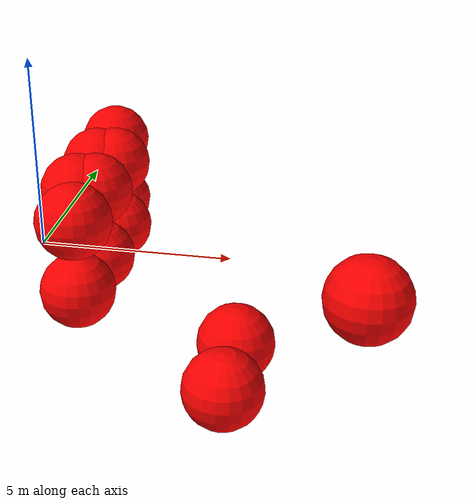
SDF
<sdf version="1.8">
 <world name="3d_world">
  <model name="obstacle_7" canonical_link="obstacle">
   <static>true</static>
   <pose relative_to="world">0.57 5.34 -1.00 0 0 0</pose>
   <link name="obstacle">
    <pose relative_to="__model__">0.0 0 0.0 0 0 0</pose>
    <visual name="visual">
     <geometry><sphere><radius>1.00</radius></sphere></geometry>
     <material>
      <ambient>1.0 0.0 0.0 1</ambient>
      <diffuse>1.0 0.0 0.0 1</diffuse>
      <specular>1.0 0.0 0.0 1</specular>
     </material>
    </visual>
    <collision name="collision"><geometry><sphere><radius>1.00</radius></sphere></geometry></collision>
    <enable_gravity>false</enable_gravity>
   </link>
   <plugin filename="ignition-gazebo-velocity-control-system" name="ignition::gazebo::systems::VelocityControl">
    <initial_linear>0.00 0.00 0.00</initial_linear>
    <initial_angular>0 0 0</initial_angular>
   </plugin>
   <plugin filename="ignition-gazebo-odometry-publisher-system" name="ignition::gazebo::systems::OdometryPublisher">
    <dimensions>3</dimensions>
   </plugin>
  </model>
  <model name="obstacle_8" canonical_link="obstacle">
   <static>true</static>
   <pose relative_to="world">0.57 1.34 1.00 0 0 0</pose>
   <link name="obstacle">
    <pose relative_to="__model__">0.0 0 0.0 0 0 0</pose>
    <visual name="visual">
     <geometry><sphere><radius>1.00</radius></sphere></geometry>
     <material>
      <ambient>1.0 0.0 0.0 1</ambient>
      <diffuse>1.0 0.0 0.0 1</diffuse>
      <specular>1.0 0.0 0.0 1</specular>
     </material>
    </visual>
    <collision name="collision"><geometry><sphere><radius>1.00</radius></sphere></geometry></collision>
    <enable_gravity>false</enable_gravity>
   </link>
   <plugin filename="ignition-gazebo-velocity-control-system" name="ignition::gazebo::systems::VelocityControl">
    <initial_linear>0.00 0.00 0.00</initial_linear>
    <initial_angular>0 0 0</initial_angular>
   </plugin>
   <plugin filename="ignition-gazebo-odometry-publisher-system" name="ignition::gazebo::systems::OdometryPublisher">
    <dimensions>3</dimensions>
   </plugin>
  </model>
  <model name="obstacle_9" canonical_link="obstacle">
   <static>true</static>
   <pose relative_to="world">0.57 3.34 1.00 0 0 0</pose>
   <link name="obstacle">
    <pose relative_to="__model__">0.0 0 0.0 0 0 0</pose>
    <visual name="visual">
     <geometry><sphere><radius>1.00</radius></sphere></geometry>
     <material>
      <ambient>1.0 0.0 0.0 1</ambient>
      <diffuse>1.0 0.0 0.0 1</diffuse>
      <specular>1.0 0.0 0.0 1</specular>
     </material>
    </visual>
    <collision name="collision"><geometry><sphere><radius>1.00</radius></sphere></geometry></collision>
    <enable_gravity>false</enable_gravity>
   </link>
   <plugin filename="ignition-gazebo-velocity-control-system" name="ignition::gazebo::systems::VelocityControl">
    <initial_linear>0.00 0.00 0.00</initial_linear>
    <initial_angular>0 0 0</initial_angular>
   </plugin>
   <plugin filename="ignition-gazebo-odometry-publisher-system" name="ignition::gazebo::systems::OdometryPublisher">
    <dimensions>3</dimensions>
   </plugin>
  </model>
  <model name="obstacle_10" canonical_link="obstacle">
   <static>true</static>
   <pose relative_to="world">0.57 5.34 1.00 0 0 0</pose>
   <link name="obstacle">
    <pose relative_to="__model__">0.0 0 0.0 0 0 0</pose>
    <visual name="visual">
     <geometry><sphere><radius>1.00</radius></sphere></geometry>
     <material>
      <ambient>1.0 0.0 0.0 1</ambient>
      <diffuse>1.0 0.0 0.0 1</diffuse>
      <specular>1.0 0.0 0.0 1</specular>
     </material>
    </visual>
    <collision name="collision"><geometry><sphere><radius>1.00</radius></sphere></geometry></collision>
    <enable_gravity>false</enable_gravity>
   </link>
   <plugin filename="ignition-gazebo-velocity-control-system" name="ignition::gazebo::systems::VelocityControl">
    <initial_linear>0.00 0.00 0.00</initial_linear>
    <initial_angular>0 0 0</initial_angular>
   </plugin>
   <plugin filename="ignition-gazebo-odometry-publisher-system" name="ignition::gazebo::systems::OdometryPublisher">
    <dimensions>3</dimensions>
   </plugin>
  </model>
  <model name="obstacle_17" canonical_link="obstacle">
   <static>true</static>
   <pose relative_to="world">1.06 -0.56 -1.00 0 0 0</pose>
   <link name="obstacle">
    <pose relative_to="__model__">0.0 0 0.0 0 0 0</pose>
    <visual name="visual">
     <geometry><sphere><radius>1.00</radius></sphere></geometry>
     <material>
      <ambient>1.0 0.0 0.0 1</ambient>
      <diffuse>1.0 0.0 0.0 1</diffuse>
      <specular>1.0 0.0 0.0 1</specular>
     </material>
    </visual>
    <collision name="collision"><geometry><sphere><radius>1.00</radius></sphere></geometry></collision>
    <enable_gravity>false</enable_gravity>
   </link>
   <plugin filename="ignition-gazebo-velocity-control-system" name="ignition::gazebo::systems::VelocityControl">
    <initial_linear>0.00 0.00 0.00</initial_linear>
    <initial_angular>0 0 0</initial_angular>
   </plugin>
   <plugin filename="ignition-gazebo-odometry-publisher-system" name="ignition::gazebo::systems::OdometryPublisher">
    <dimensions>3</dimensions>
   </plugin>
  </model>
  <model name="obstacle_18" canonical_link="obstacle">
   <static>true</static>
   <pose relative_to="world">1.06 1.44 -1.00 0 0 0</pose>
   <link name="obstacle">
    <pose relative_to="__model__">0.0 0 0.0 0 0 0</pose>
    <visual name="visual">
     <geometry><sphere><radius>1.00</radius></sphere></geometry>
     <material>
      <ambient>1.0 0.0 0.0 1</ambient>
      <diffuse>1.0 0.0 0.0 1</diffuse>
      <specular>1.0 0.0 0.0 1</specular>
     </material>
    </visual>
    <collision name="collision"><geometry><sphere><radius>1.00</radius></sphere></geometry></collision>
    <enable_gravity>false</enable_gravity>
   </link>
   <plugin filename="ignition-gazebo-velocity-control-system" name="ignition::gazebo::systems::VelocityControl">
    <initial_linear>0.00 0.00 0.00</initial_linear>
    <initial_angular>0 0 0</initial_angular>
   </plugin>
   <plugin filename="ignition-gazebo-odometry-publisher-system" name="ignition::gazebo::systems::OdometryPublisher">
    <dimensions>3</dimensions>
   </plugin>
  </model>
  <model name="obstacle_19" canonical_link="obstacle">
   <static>true</static>
   <pose relative_to="world">1.06 3.44 -1.00 0 0 0</pose>
   <link name="obstacle">
    <pose relative_to="__model__">0.0 0 0.0 0 0 0</pose>
    <visual name="visual">
     <geometry><sphere><radius>1.00</radius></sphere></geometry>
     <material>
      <ambient>1.0 0.0 0.0 1</ambient>
      <diffuse>1.0 0.0 0.0 1</diffuse>
      <specular>1.0 0.0 0.0 1</specular>
     </material>
    </visual>
    <collision name="collision"><geometry><sphere><radius>1.00</radius></sphere></geometry></collision>
    <enable_gravity>false</enable_gravity>
   </link>
   <plugin filename="ignition-gazebo-velocity-control-system" name="ignition::gazebo::systems::VelocityControl">
    <initial_linear>0.00 0.00 0.00</initial_linear>
    <initial_angular>0 0 0</initial_angular>
   </plugin>
   <plugin filename="ignition-gazebo-odometry-publisher-system" name="ignition::gazebo::systems::OdometryPublisher">
    <dimensions>3</dimensions>
   </plugin>
  </model>
  <model name="obstacle_20" canonical_link="obstacle">
   <static>true</static>
   <pose relative_to="world">1.06 -0.56 1.00 0 0 0</pose>
   <link name="obstacle">
    <pose relative_to="__model__">0.0 0 0.0 0 0 0</pose>
    <visual name="visual">
     <geometry><sphere><radius>1.00</radius></sphere></geometry>
     <material>
      <ambient>1.0 0.0 0.0 1</ambient>
      <diffuse>1.0 0.0 0.0 1</diffuse>
      <specular>1.0 0.0 0.0 1</specular>
     </material>
    </visual>
    <collision name="collision"><geometry><sphere><radius>1.00</radius></sphere></geometry></collision>
    <enable_gravity>false</enable_gravity>
   </link>
   <plugin filename="ignition-gazebo-velocity-control-system" name="ignition::gazebo::systems::VelocityControl">
    <initial_linear>0.00 0.00 0.00</initial_linear>
    <initial_angular>0 0 0</initial_angular>
   </plugin>
   <plugin filename="ignition-gazebo-odometry-publisher-system" name="ignition::gazebo::systems::OdometryPublisher">
    <dimensions>3</dimensions>
   </plugin>
  </model>
  <model name="obstacle_21" canonical_link="obstacle">
   <static>true</static>
   <pose relative_to="world">1.06 1.44 1.00 0 0 0</pose>
   <link name="obstacle">
    <pose relative_to="__model__">0.0 0 0.0 0 0 0</pose>
    <visual name="visual">
     <geometry><sphere><radius>1.00</radius></sphere></geometry>
     <material>
      <ambient>1.0 0.0 0.0 1</ambient>
      <diffuse>1.0 0.0 0.0 1</diffuse>
      <specular>1.0 0.0 0.0 1</specular>
     </material>
    </visual>
    <collision name="collision"><geometry><sphere><radius>1.00</radius></sphere></geometry></collision>
    <enable_gravity>false</enable_gravity>
   </link>
   <plugin filename="ignition-gazebo-velocity-control-system" name="ignition::gazebo::systems::VelocityControl">
    <initial_linear>0.00 0.00 0.00</initial_linear>
    <initial_angular>0 0 0</initial_angular>
   </plugin>
   <plugin filename="ignition-gazebo-odometry-publisher-system" name="ignition::gazebo::systems::OdometryPublisher">
    <dimensions>3</dimensions>
   </plugin>
  </model>
  <model name="obstacle_22" canonical_link="obstacle">
   <static>true</static>
   <pose relative_to="world">1.06 3.44 1.00 0 0 0</pose>
   <link name="obstacle">
    <pose relative_to="__model__">0.0 0 0.0 0 0 0</pose>
    <visual name="visual">
     <geometry><sphere><radius>1.00</radius></sphere></geometry>
     <material>
      <ambient>1.0 0.0 0.0 1</ambient>
      <diffuse>1.0 0.0 0.0 1</diffuse>
      <specular>1.0 0.0 0.0 1</specular>
     </material>
    </visual>
    <collision name="collision"><geometry><sphere><radius>1.00</radius></sphere></geometry></collision>
    <enable_gravity>false</enable_gravity>
   </link>
   <plugin filename="ignition-gazebo-velocity-control-system" name="ignition::gazebo::systems::VelocityControl">
    <initial_linear>0.00 0.00 0.00</initial_linear>
    <initial_angular>0 0 0</initial_angular>
   </plugin>
   <plugin filename="ignition-gazebo-odometry-publisher-system" name="ignition::gazebo::systems::OdometryPublisher">
    <dimensions>3</dimensions>
   </plugin>
  </model>
  <model name="obstacle_23" canonical_link="obstacle">
   <static>false</static>
   <pose relative_to="world">5.36 -3.23 -1.70 0 0 0</pose>
   <link name="obstacle">
    <pose relative_to="__model__">0.0 0 0.0 0 0 0</pose>
    <visual name="visual">
     <geometry><sphere><radius>1.00</radius></sphere></geometry>
     <material>
      <ambient>1.0 0.0 0.0 1</ambient>
      <diffuse>1.0 0.0 0.0 1</diffuse>
      <specular>1.0 0.0 0.0 1</specular>
     </material>
    </visual>
    <collision name="collision"><geometry><sphere><radius>1.00</radius></sphere></geometry></collision>
    <enable_gravity>false</enable_gravity>
   </link>
   <plugin filename="ignition-gazebo-velocity-control-system" name="ignition::gazebo::systems::VelocityControl">
    <initial_linear>0.00 0.87 0.61</initial_linear>
    <initial_angular>0 0 0</initial_angular>
   </plugin>
   <plugin filename="ignition-gazebo-odometry-publisher-system" name="ignition::gazebo::systems::OdometryPublisher">
    <dimensions>3</dimensions>
   </plugin>
  </model>
  <model name="obstacle_24" canonical_link="obstacle">
   <static>false</static>
   <pose relative_to="world">5.36 -1.23 -1.70 0 0 0</pose>
   <link name="obstacle">
    <pose relative_to="__model__">0.0 0 0.0 0 0 0</pose>
    <visual name="visual">
     <geometry><sphere><radius>1.00</radius></sphere></geometry>
     <material>
      <ambient>1.0 0.0 0.0 1</ambient>
      <diffuse>1.0 0.0 0.0 1</diffuse>
      <specular>1.0 0.0 0.0 1</specular>
     </material>
    </visual>
    <collision name="collision"><geometry><sphere><radius>1.00</radius></sphere></geometry></collision>
    <enable_gravity>false</enable_gravity>
   </link>
   <plugin filename="ignition-gazebo-velocity-control-system" name="ignition::gazebo::systems::VelocityControl">
    <initial_linear>0.00 0.87 0.61</initial_linear>
    <initial_angular>0 0 0</initial_angular>
   </plugin>
   <plugin filename="ignition-gazebo-odometry-publisher-system" name="ignition::gazebo::systems::OdometryPublisher">
    <dimensions>3</dimensions>
   </plugin>
  </model>
  <model name="obstacle_25" canonical_link="obstacle">
   <static>false</static>
   <pose relative_to="world">8.50 -3.34 1.12 0 0 0</pose>
   <link name="obstacle">
    <pose relative_to="__model__">0.0 0 0.0 0 0 0</pose>
    <visual name="visual">
     <geometry><sphere><radius>1.00</radius></sphere></geometry>
     <material>
      <ambient>1.0 0.0 0.0 1</ambient>
      <diffuse>1.0 0.0 0.0 1</diffuse>
      <specular>1.0 0.0 0.0 1</specular>
     </material>
    </visual>
    <collision name="collision"><geometry><sphere><radius>1.00</radius></sphere></geometry></collision>
    <enable_gravity>false</enable_gravity>
   </link>
   <plugin filename="ignition-gazebo-velocity-control-system" name="ignition::gazebo::systems::VelocityControl">
    <initial_linear>0.00 1.16 -0.32</initial_linear>
    <initial_angular>0 0 0</initial_angular>
   </plugin>
   <plugin filename="ignition-gazebo-odometry-publisher-system" name="ignition::gazebo::systems::OdometryPublisher">
    <dimensions>3</dimensions>
   </plugin>
  </model>
 </world>
</sdf>
